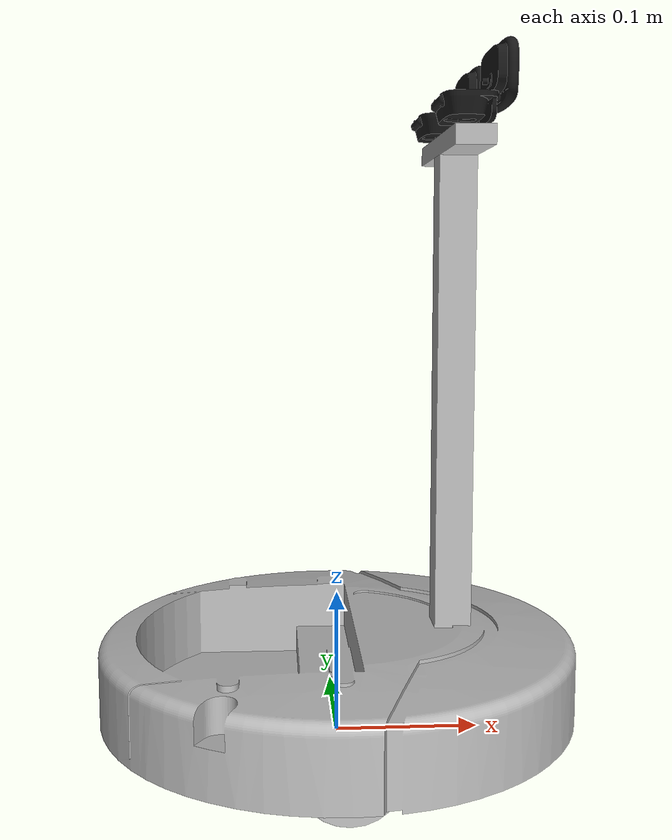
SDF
<?xml version="1.0" ?>
<sdf version="1.5">
  <model name="rr_create">
    <link name="base">
      <inertial>
        <pose>0.001453 -0.000453 0.029787 0 0 0</pose>
        <inertia>
          <ixx>0.058640</ixx>
          <ixy>0.000124</ixy>
          <ixz>0.000615</ixz>
          <iyy>0.058786</iyy>
          <iyz>0.000014</iyz>
          <izz>1.532440</izz>
        </inertia>
        <mass>2.234000</mass>
      </inertial>
      <collision name="base_collision">
        <pose>0 0 0.047800 0 0 0</pose>
        <geometry>
          <cylinder>
            <radius>0.016495</radius>
            <length>0.061163</length>
          </cylinder>
        </geometry>
      </collision>
      <visual name="base_visual">
        <pose>0 0 0.047800 0 0 0</pose>
        <geometry>
          <mesh>
            <uri>model://rr_create/meshes/create_body.dae</uri>
          </mesh>
        </geometry>
      </visual>
      <collision name="front_wheel_collision">
        <pose>0.130000 0 0.017000 0 1.570700 1.570700</pose>
        <geometry>
          <sphere>
            <radius>0.018000</radius>
          </sphere>
        </geometry>
        <surface>
          <friction>
            <ode>
              <mu>0</mu>
              <mu2>0</mu2>
              <fdir1>0 0 0</fdir1>
              <slip1>0</slip1>
              <slip2>0</slip2>
            </ode>
          </friction>
        </surface>
      </collision>
      <visual name="front_wheel_visual">
        <pose>0.130000 0 0.017000 0 1.570700 1.570700</pose>
        <geometry>
          <sphere>
            <radius>0.009000</radius>
          </sphere>
        </geometry>
      </visual>
      <collision name="rear_wheel_collision">
        <pose>-0.13 0 0.017 0 1.5707 1.5707</pose>
        <geometry>
          <sphere>
            <radius>0.015000</radius>
          </sphere>
        </geometry>
        <surface>
          <friction>
            <ode>
              <mu>0</mu>
              <mu2>0</mu2>
              <fdir1>0 0 0</fdir1>
              <slip1>0</slip1>
              <slip2>0</slip2>
            </ode>
          </friction>
        </surface>
      </collision>
      <visual name="rear_wheel_visual">
        <pose>-0.130000 0 0.017000 0 1.570700 1.570700</pose>
        <geometry>
          <sphere>
            <radius>0.007500</radius>
          </sphere>
        </geometry>
      </visual>
      <sensor name="left_cliff_sensor" type="ray">
        <pose>0.070000 0.140000 0.027000 0 1.570790 0</pose>
        <ray>
          <scan>
            <horizontal>
              <samples>1</samples>
              <resolution>1.000000</resolution>
              <min_angle>0</min_angle>
              <max_angle>0</max_angle>
            </horizontal>
          </scan>
          <range>
            <min>0.010000</min>
            <max>0.040000</max>
            <resolution>0.100000</resolution>
          </range>
        </ray>
      </sensor>
      <sensor name="leftfront_cliff_sensor" type="ray">
        <pose>0.150000 0.040000 0.027000 0 1.570790 0</pose>
        <ray>
          <scan>
            <horizontal>
              <samples>1</samples>
              <resolution>1.000000</resolution>
              <min_angle>0</min_angle>
              <max_angle>0</max_angle>
            </horizontal>
          </scan>
          <range>
            <min>0.010000</min>
            <max>0.040000</max>
            <resolution>0.100000</resolution>
          </range>
        </ray>
      </sensor>
      <sensor name="right_cliff_sensor" type="ray">
        <pose>0.070000 -0.140000 0.027000 0 1.570790 0</pose>
        <ray>
          <scan>
            <horizontal>
              <samples>1</samples>
              <resolution>1.000000</resolution>
              <min_angle>0</min_angle>
              <max_angle>0</max_angle>
            </horizontal>
          </scan>
          <range>
            <min>0.010000</min>
            <max>0.040000</max>
            <resolution>0.100000</resolution>
          </range>
        </ray>
      </sensor>
      <sensor name="rightfront_cliff_sensor" type="ray">
        <pose>0.150000 -0.040000 0.027000 0 1.570790 0</pose>
        <ray>
          <scan>
            <horizontal>
              <samples>1</samples>
              <resolution>1.000000</resolution>
              <min_angle>0</min_angle>
              <max_angle>0</max_angle>
            </horizontal>
          </scan>
          <range>
            <min>0.010000</min>
            <max>0.040000</max>
            <resolution>0.100000</resolution>
          </range>
        </ray>
      </sensor>
      <sensor name="wall_sensor" type="ray">
        <pose>0.090000 -0.120000 0.059000 0 0 -1.000000</pose>
        <ray>
          <scan>
            <horizontal>
              <samples>1</samples>
              <resolution>1.000000</resolution>
              <min_angle>0</min_angle>
              <max_angle>0</max_angle>
            </horizontal>
          </scan>
          <range>
            <min>0.016000</min>
            <max>0.040000</max>
            <resolution>0.100000</resolution>
          </range>
        </ray>
      </sensor>
      <visual name="mast_pier">
        <pose>0.08 0 0.21 0 0 0</pose>
        <geometry>
          <box><size>0.0254 0.0254 0.38</size></box>
        </geometry>
      </visual>
      <visual name="mast_crossbar">
        <pose>0.08 0 0.40635 0 0 0</pose>
        <geometry>
          <box><size>0.0254 0.1524 0.0127</size></box>
        </geometry>
      </visual>
      <visual name="left_camera">
        <pose>0.0772 0.0508 0.4314 1.570790 0 1.570790</pose>
        <geometry>
        <mesh>
          <uri>model://rr_create/meshes/logitech_camera.dae</uri>
        </mesh>
        </geometry>
        <material>
          <ambient>0.1 0.1 0.1 1</ambient>
          <diffuse>0.1 0.1 0.1 1</diffuse>
          <specular>0 0 0 0</specular>
          <emissive>0 0 0 1</emissive>
        </material>
      </visual>
      <visual name="right_camera">
        <pose>0.0772 -0.0508 0.4314 1.570790 0 1.570790</pose>
        <geometry>
        <mesh>
          <uri>model://rr_create/meshes/logitech_camera.dae</uri>
        </mesh>
        </geometry>
        <material>
          <ambient>0.1 0.1 0.1 1</ambient>
          <diffuse>0.1 0.1 0.1 1</diffuse>
          <specular>0 0 0 0</specular>
          <emissive>0 0 0 1</emissive>
        </material>
      </visual>

      <sensor name="left_camera" type="camera">

        <pose>0.0772 0.0508 0.4435 0 0 0</pose>
        <camera>

          <image>
            <width>1280</width>
            <height>720</height>
            <format>B8G8R8</format>
          </image>
          <lens>
            <intrinsics>
              <fx>616.23</fx>
              <fy>617.23</fy>
              <cx>641.29</cx>
              <cy>359.53</cy>
            </intrinsics>
          </lens>
          <clip>
            <near>0.1</near>
            <far>100</far>
          </clip>
        </camera>
        <always_on>1</always_on>
        <update_rate>30</update_rate>
        <visualize>false</visualize>
      </sensor>

      <sensor name="right_camera" type="camera">

        <pose>0.0772 -0.0508 0.4435 0 0 0</pose>
        <camera>

          <image>
            <width>1280</width>
            <height>720</height>
            <format>B8G8R8</format>
          </image>
          <lens>
            <intrinsics>
              <fx>616.23</fx>
              <fy>617.23</fy>
              <cx>641.29</cx>
              <cy>359.53</cy>
            </intrinsics>
          </lens>
          <clip>
            <near>0.1</near>
            <far>100</far>
          </clip>
        </camera>
        <always_on>1</always_on>
        <update_rate>30</update_rate>
        <visualize>false</visualize>
      </sensor>

    </link>
    <link name="left_wheel">
      <pose>0 0.130000 0.032000 0 0 0</pose>
      <inertial>
        <inertia>
          <ixx>0.001000</ixx>
          <ixy>0</ixy>
          <ixz>0</ixz>
          <iyy>0.001000</iyy>
          <iyz>0</iyz>
          <izz>0.001000</izz>
        </inertia>
        <mass>0.010000</mass>
      </inertial>
      <collision name="collision">
        <pose>0 0 0 0 1.570700 1.570700</pose>
        <geometry>
          <cylinder>
            <radius>0.033000</radius>
            <length>0.023000</length>
          </cylinder>
        </geometry>
        <surface>
          <friction>
            <ode>
              <mu>10</mu>
              <mu2>10</mu2>
              <fdir1>0 0 0</fdir1>
              <slip1>0</slip1>
              <slip2>0</slip2>
            </ode>
          </friction>
        </surface>
      </collision>
      <visual name="visual">
        <pose>0 0 0 0 1.570700 1.570700</pose>
        <geometry>
          <cylinder>
            <radius>0.033000</radius>
            <length>0.023000</length>
          </cylinder>
        </geometry>
      </visual>
    </link>
    <link name="right_wheel">
      <pose>0 -0.130000 0.032000 0 0 0</pose>
      <inertial>
        <inertia>
          <ixx>0.001000</ixx>
          <ixy>0</ixy>
          <ixz>0</ixz>
          <iyy>0.001000</iyy>
          <iyz>0</iyz>
          <izz>0.001000</izz>
        </inertia>
        <mass>0.010000</mass>
      </inertial>
      <collision name="collision">
        <pose>0 0 0 0 1.570700 1.570700</pose>
        <geometry>
          <cylinder>
            <radius>0.033000</radius>
            <length>0.023000</length>
          </cylinder>
        </geometry>
        <surface>
          <friction>
            <ode>
              <mu>10</mu>
              <mu2>10</mu2>
              <fdir1>0 0 0</fdir1>
              <slip1>0</slip1>
              <slip2>0</slip2>
            </ode>
          </friction>
        </surface>
      </collision>
      <visual name="visual">
        <pose>0 0 0 0 1.570700 1.570700</pose>
        <geometry>
          <cylinder>
            <radius>0.033000</radius>
            <length>0.023000</length>
          </cylinder>
        </geometry>
      </visual>
    </link>
    <joint name="left_wheel" type="revolute">
      <parent>base</parent>
      <child>left_wheel</child>
      <axis>
        <xyz>0 1 0</xyz>
        <use_parent_model_frame>true</use_parent_model_frame>
      </axis>
    </joint>
    <joint name="right_wheel" type="revolute">
      <parent>base</parent>
      <child>right_wheel</child>
      <axis>
        <xyz>0 1 0</xyz>
        <use_parent_model_frame>true</use_parent_model_frame>
      </axis>
    </joint>
  </model>
</sdf>
